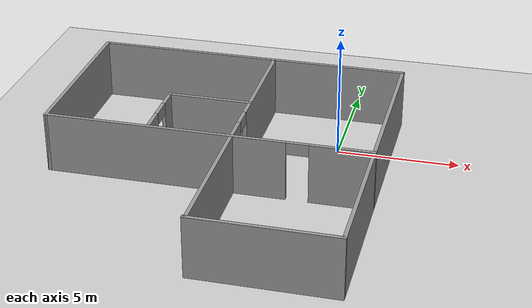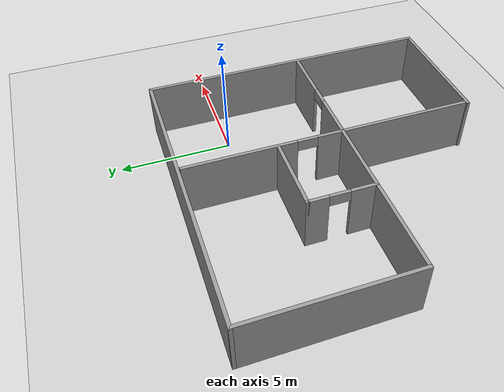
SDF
<sdf version="1.6">
 <world name="default">
  <light name="sun" type="directional">
   <pose>0 0 15 0 -0 0</pose>
   <diffuse>1 1 1 1</diffuse>
   <specular>0.1 0.1 0.1 1</specular>
   <attenuation>
    <range>1000</range>
    <constant>0.9</constant>
    <linear>0.01</linear>
    <quadratic>0.001</quadratic>
   </attenuation>
   <direction>-0.5 0.5 -1</direction>
  </light>
  <model name="ground_plane">
   <static>1</static>
   <link name="link">
    <collision name="collision">
     <geometry><plane><normal>0 0 1</normal><size>100 100</size></plane></geometry>
     <surface><friction><ode><mu>100</mu><mu2>50</mu2></ode></friction></surface>
    </collision>
    <visual name="visual">
     <cast_shadows>0</cast_shadows>
     <geometry><plane><normal>0 0 1</normal><size>100 100</size></plane></geometry>
     <material>
      <script><uri>file://media/materials/scripts/gazebo.material</uri><name>Gazebo/Grey</name></script>
     </material>
    </visual>
   </link>
  </model>
  <gravity>0 0 -9.8</gravity>
  <magnetic_field>6e-06 2.3e-05 -4.2e-05</magnetic_field>
  <atmosphere type="adiabatic"/>
  <physics name="default_physics" default="0" type="ode">
   <max_step_size>0.001</max_step_size>
   <real_time_factor>1</real_time_factor>
   <real_time_update_rate>1000</real_time_update_rate>
  </physics>
  <scene><ambient>0.4 0.4 0.4 1</ambient><background>0.7 0.7 0.7 1</background><shadows>1</shadows></scene>
  <spherical_coordinates>
   <surface_model>EARTH_WGS84</surface_model>
   <latitude_deg>0</latitude_deg>
   <longitude_deg>0</longitude_deg>
   <elevation>0</elevation>
   <heading_deg>0</heading_deg>
  </spherical_coordinates>
  <model name="testmap1">
   <pose>-4.41218 -3.62309 0 0 -0 0</pose>
   <link name="Wall_1">
    <collision name="Wall_1_Collision">
     <geometry><box><size>13.25 0.15 2.5</size></box></geometry>
     <pose>0 0 1.25 0 -0 0</pose>
    </collision>
    <visual name="Wall_1_Visual">
     <pose>0 0 1.25 0 -0 0</pose>
     <geometry><box><size>13.25 0.15 2.5</size></box></geometry>
     <material>
      <script><uri>file://media/materials/scripts/gazebo.material</uri><name>Gazebo/Grey</name></script>
      <ambient>1 1 1 1</ambient>
     </material>
    </visual>
    <pose>0 6.55 0 0 -0 0</pose>
   </link>
   <link name="Wall_11">
    <collision name="Wall_11_Collision">
     <geometry><box><size>3.5 0.15 2.5</size></box></geometry>
     <pose>0 0 1.25 0 -0 0</pose>
    </collision>
    <visual name="Wall_11_Visual">
     <pose>0 0 1.25 0 -0 0</pose>
     <geometry><box><size>3.5 0.15 2.5</size></box></geometry>
     <material>
      <script><uri>file://media/materials/scripts/gazebo.material</uri><name>Gazebo/Grey</name></script>
      <ambient>1 1 1 1</ambient>
     </material>
    </visual>
    <pose>-0.663985 2.33165 0 0 -0 3.14159</pose>
   </link>
   <link name="Wall_12">
    <pose>-2.33899 0.906653 0 0 0 -1.5708</pose>
    <visual name="Wall_12_Visual_0">
     <pose>-1.0191 0 1.25 0 -0 0</pose>
     <geometry><box><size>0.961793 0.15 2.5</size></box></geometry>
     <material>
      <script><uri>file://media/materials/scripts/gazebo.material</uri><name>Gazebo/Grey</name></script>
      <ambient>1 1 1 1</ambient>
     </material>
    </visual>
    <collision name="Wall_12_Collision_0">
     <geometry><box><size>0.961793 0.15 2.5</size></box></geometry>
     <pose>-1.0191 0 1.25 0 -0 0</pose>
    </collision>
    <visual name="Wall_12_Visual_1">
     <pose>0.930896 0 1.25 0 -0 0</pose>
     <geometry><box><size>1.13821 0.15 2.5</size></box></geometry>
     <material>
      <script><uri>file://media/materials/scripts/gazebo.material</uri><name>Gazebo/Grey</name></script>
      <ambient>1 1 1 1</ambient>
     </material>
    </visual>
    <collision name="Wall_12_Collision_1">
     <geometry><box><size>1.13821 0.15 2.5</size></box></geometry>
     <pose>0.930896 0 1.25 0 -0 0</pose>
    </collision>
    <visual name="Wall_12_Visual_2">
     <pose>-0.088207 0 2.25 0 -0 0</pose>
     <geometry><box><size>0.9 0.15 0.5</size></box></geometry>
     <material>
      <script><uri>file://media/materials/scripts/gazebo.material</uri><name>Gazebo/Grey</name></script>
      <ambient>1 1 1 1</ambient>
     </material>
    </visual>
    <collision name="Wall_12_Collision_2">
     <geometry><box><size>0.9 0.15 0.5</size></box></geometry>
     <pose>-0.088207 0 2.25 0 -0 0</pose>
    </collision>
   </link>
   <link name="Wall_2">
    <collision name="Wall_2_Collision">
     <geometry><box><size>13.25 0.15 2.5</size></box></geometry>
     <pose>0 0 1.25 0 -0 0</pose>
    </collision>
    <visual name="Wall_2_Visual">
     <pose>0 0 1.25 0 -0 0</pose>
     <geometry><box><size>13.25 0.15 2.5</size></box></geometry>
     <material>
      <script><uri>file://media/materials/scripts/gazebo.material</uri><name>Gazebo/Grey</name></script>
      <ambient>1 1 1 1</ambient>
     </material>
    </visual>
    <pose>6.55 0 0 0 0 -1.5708</pose>
   </link>
   <link name="Wall_3">
    <collision name="Wall_3_Collision">
     <geometry><box><size>5.75 0.15 2.5</size></box></geometry>
     <pose>0 0 1.25 0 -0 0</pose>
    </collision>
    <visual name="Wall_3_Visual">
     <pose>0 0 1.25 0 -0 0</pose>
     <geometry><box><size>5.75 0.15 2.5</size></box></geometry>
     <material>
      <script><uri>file://media/materials/scripts/gazebo.material</uri><name>Gazebo/Grey</name></script>
      <ambient>1 1 1 1</ambient>
     </material>
    </visual>
    <pose>3.75 -6.55 0 0 -0 3.14159</pose>
   </link>
   <link name="Wall_6">
    <pose>1.01101 -0.047789 0 0 0 -1.5708</pose>
    <visual name="Wall_6_Visual_0">
     <pose>-4.01391 0 1.25 0 -0 0</pose>
     <geometry><box><size>4.97217 0.15 2.5</size></box></geometry>
     <material>
      <script><uri>file://media/materials/scripts/gazebo.material</uri><name>Gazebo/Grey</name></script>
      <ambient>1 1 1 1</ambient>
     </material>
    </visual>
    <collision name="Wall_6_Collision_0">
     <geometry><box><size>4.97217 0.15 2.5</size></box></geometry>
     <pose>-4.01391 0 1.25 0 -0 0</pose>
    </collision>
    <visual name="Wall_6_Visual_1">
     <pose>2.93609 0 1.25 0 -0 0</pose>
     <geometry><box><size>7.12783 0.15 2.5</size></box></geometry>
     <material>
      <script><uri>file://media/materials/scripts/gazebo.material</uri><name>Gazebo/Grey</name></script>
      <ambient>1 1 1 1</ambient>
     </material>
    </visual>
    <collision name="Wall_6_Collision_1">
     <geometry><box><size>7.12783 0.15 2.5</size></box></geometry>
     <pose>2.93609 0 1.25 0 -0 0</pose>
    </collision>
    <visual name="Wall_6_Visual_2">
     <pose>-1.07783 0 2.25 0 -0 0</pose>
     <geometry><box><size>0.9 0.15 0.5</size></box></geometry>
     <material>
      <script><uri>file://media/materials/scripts/gazebo.material</uri><name>Gazebo/Grey</name></script>
      <ambient>1 1 1 1</ambient>
     </material>
    </visual>
    <collision name="Wall_6_Collision_2">
     <geometry><box><size>0.9 0.15 0.5</size></box></geometry>
     <pose>-1.07783 0 2.25 0 -0 0</pose>
    </collision>
   </link>
   <link name="Wall_8">
    <collision name="Wall_8_Collision">
     <geometry><box><size>7.25 0.15 2.5</size></box></geometry>
     <pose>0 0 1.25 0 -0 0</pose>
    </collision>
    <visual name="Wall_8_Visual">
     <pose>0 0 1.25 0 -0 0</pose>
     <geometry><box><size>7.25 0.15 2.5</size></box></geometry>
     <material>
      <script><uri>file://media/materials/scripts/gazebo.material</uri><name>Gazebo/Grey</name></script>
      <ambient>1 1 1 1</ambient>
     </material>
    </visual>
    <pose>-6.55 3 0 0 0 -1.5708</pose>
   </link>
   <link name="Wall_9">
    <pose>0 -0.55 0 0 -0 0</pose>
    <visual name="Wall_9_Visual_0">
     <pose>-1.73038 0 1.25 0 -0 0</pose>
     <geometry><box><size>9.78924 0.15 2.5</size></box></geometry>
     <material>
      <script><uri>file://media/materials/scripts/gazebo.material</uri><name>Gazebo/Grey</name></script>
      <ambient>1 1 1 1</ambient>
     </material>
    </visual>
    <collision name="Wall_9_Collision_0">
     <geometry><box><size>9.78924 0.15 2.5</size></box></geometry>
     <pose>-1.73038 0 1.25 0 -0 0</pose>
    </collision>
    <visual name="Wall_9_Visual_1">
     <pose>5.34462 0 1.25 0 -0 0</pose>
     <geometry><box><size>2.56076 0.15 2.5</size></box></geometry>
     <material>
      <script><uri>file://media/materials/scripts/gazebo.material</uri><name>Gazebo/Grey</name></script>
      <ambient>1 1 1 1</ambient>
     </material>
    </visual>
    <collision name="Wall_9_Collision_1">
     <geometry><box><size>2.56076 0.15 2.5</size></box></geometry>
     <pose>5.34462 0 1.25 0 -0 0</pose>
    </collision>
    <visual name="Wall_9_Visual_2">
     <pose>3.61424 0 2.25 0 -0 0</pose>
     <geometry><box><size>0.9 0.15 0.5</size></box></geometry>
     <material>
      <script><uri>file://media/materials/scripts/gazebo.material</uri><name>Gazebo/Grey</name></script>
      <ambient>1 1 1 1</ambient>
     </material>
    </visual>
    <collision name="Wall_9_Collision_2">
     <geometry><box><size>0.9 0.15 0.5</size></box></geometry>
     <pose>3.61424 0 2.25 0 -0 0</pose>
    </collision>
   </link>
   <static>1</static>
  </model>
 </world>
</sdf>
